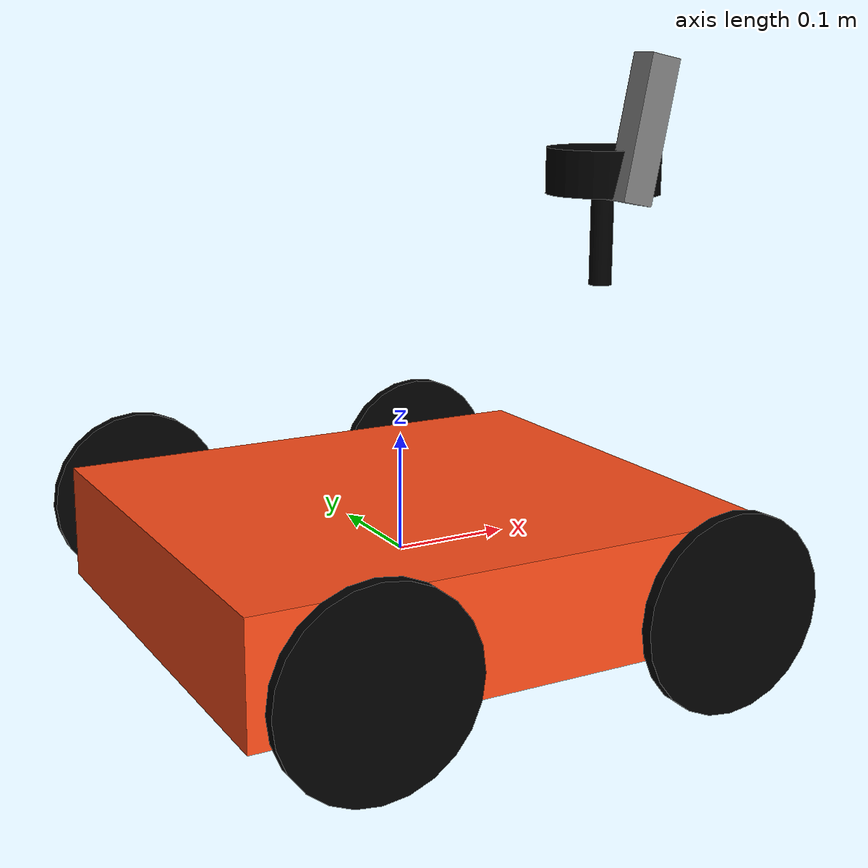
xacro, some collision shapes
<?xml version="1.0"?>

<robot name='robot' xmlns:xacro="http://ros.org/wiki/xacro">

  <xacro:property name="wheel_offset_x" value="0.0"/>
  <xacro:property name="wheel_offset_y" value="0.0"/>
  <xacro:property name="wheel_offset_z" value="0.0"/>

  <xacro:property name="wheel_mass" value="0.1"/>
  <xacro:property name="wheel_radius" value="0.08"/>
  <xacro:property name="wheel_width" value="0.01"/>

  <xacro:property name="body_height" value="0.1"/>
  <xacro:property name="body_width" value="0.45"/>
  <xacro:property name="body_length" value="0.4"/>
  <xacro:property name="mass" value="5.0"/>

  <xacro:property name="wheeltrack" value="0.5"/>
  <xacro:property name="wheelbase" value="0.3"/>

  <xacro:property name="chassis_offset_z" value="0.0"/>
  <xacro:property name="chassis_offset_y" value="0.0"/>
  <xacro:property name="chassis_offset_x" value="0.0"/>

  <xacro:include filename="$(find robot_description)/urdf/gazebo.urdf.xacro" />
  <xacro:include filename="$(find robot_description)/urdf/lidar.urdf.xacro" />
  <xacro:include filename="$(find robot_description)/urdf/depth.urdf.xacro" />
  <xacro:include filename="$(find robot_description)/urdf/imu.urdf.xacro" />

  <material name="white">
      <color rgba="1 1 1 1" />
  </material>

  <material name="orange">
      <color rgba="1 0.3 0.1 1"/>
  </material>

  <material name="blue">
      <color rgba="0.2 0.2 1 1"/>
  </material>

  <material name="black">
      <color rgba="0 0 0 1"/>
  </material>

  <material name="red">
      <color rgba="1 0 0 1"/>
  </material>

  <link name="base_link">
  </link>

  <link name="base_footprint">
  </link>

  <joint name="base_footprint_joint" type="fixed">
    <parent link="base_link"/>
    <child link="base_footprint"/>
    <origin rpy="0 0 0" xyz="0 0 0"/>
  </joint>

  <joint name="body_joint" type="fixed">
    <parent link="base_link"/>
    <child link="body_link"/>
    <origin xyz="${-wheel_offset_x} ${-wheel_offset_y} ${-wheel_offset_z}" rpy ="0 0 ${pi/2}"/>
  </joint>

  <link name="body_link">
    <visual>
        <geometry>
          <mesh filename="file://$(find robot_description)/urdf/shorty_pizza.stl" scale="0.005 0.005 0.005"/>
        </geometry>
      <material name="orange"/>
    </visual>
    <collision>
      <geometry>
        <box size="${body_length} ${body_width} ${body_height}"/>
      </geometry>
    </collision>
    <inertial>
      <origin xyz="0 0 0" rpy="0 0 0"/>
      <mass value="${mass}" />
      <inertia ixx="${(1/12) * mass * (body_width*body_width+body_height*body_height)}" ixy="0.0" ixz="0.0"
               iyy="${(1/12) * mass * (body_length*body_length+body_height*body_height)}" iyz="0.0"
               izz="${(1/12) * mass * (body_length*body_length+body_width*body_width)}"/>
    </inertial>
  </link>

  <gazebo reference="body_link">
    <material>Gazebo/Orange</material>
  </gazebo>

  <xacro:macro name="wheel" params="prefix">
    <link name="${prefix}_wheel_link">
      <visual>
        <geometry>
          <cylinder length="${wheel_width}" radius="${wheel_radius}"/>
        </geometry>
        <material name="black"/>
        <origin rpy="${pi/2} 0 0" xyz="0 0 0"/>
      </visual>
      <collision>
        <geometry>
          <cylinder length="${wheel_width}" radius="${wheel_radius}"/>
        </geometry>
        <origin rpy="${pi/2} 0 0" xyz="0 0 0"/>
      </collision>
      <inertial>
        <origin xyz="0 0 0" rpy="0 0 0"/>
        <mass value="${wheel_mass}" />
        <inertia ixx="${(1/12) * wheel_mass * (3*wheel_radius*wheel_radius + wheel_width*wheel_width)}" ixy="0.0" ixz="0.0"
                 iyy="${(1/12) * wheel_mass * (3*wheel_radius*wheel_radius + wheel_width*wheel_width)}" iyz="0.0"
                 izz="${(1/12) * wheel_mass * (wheel_radius*wheel_radius)}"/>
      </inertial>
    </link>
    <gazebo reference="${prefix}_wheel_link">
      <material>Gazebo/Black</material>
    </gazebo>
  </xacro:macro>

  <xacro:wheel prefix="front_left"/>
  <xacro:wheel prefix="front_right"/>
  <xacro:wheel prefix="rear_left"/>
  <xacro:wheel prefix="rear_right"/>

  <xacro:macro name="wheel_joint" params="prefix origin_xyz">
    <joint name="${prefix}_wheel_joint" type="continuous">
      <origin xyz="${origin_xyz}"/>
      <parent link="base_link"/>
      <child link="${prefix}_wheel_link"/>
      <axis xyz="0 1 0"/>
    </joint>
  </xacro:macro>

  <xacro:wheel_joint prefix="front_left" origin_xyz="${wheelbase / 2 + chassis_offset_x} ${wheeltrack / 2 + chassis_offset_y} ${chassis_offset_z}"/>
  <xacro:wheel_joint prefix="front_right" origin_xyz="${wheelbase / 2 + chassis_offset_x} ${-wheeltrack / 2 + chassis_offset_y} ${chassis_offset_z}"/>
  <xacro:wheel_joint prefix="rear_left" origin_xyz="${-wheelbase / 2 + chassis_offset_x} ${wheeltrack / 2 + chassis_offset_y} ${chassis_offset_z}"/>
  <xacro:wheel_joint prefix="rear_right" origin_xyz="${-wheelbase / 2 + chassis_offset_x} ${-wheeltrack / 2 + chassis_offset_y} ${chassis_offset_z}"/>

</robot>

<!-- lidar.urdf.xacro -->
<robot xmlns:xacro="http://www.ros.org/wiki/xacro">

    <joint name="laser_joint" type="fixed">
        <parent link="base_link"/>
        <child link="laser_frame"/>
        <origin xyz="0.2 0 0.312" rpy="0 0 0"/>
    </joint>

    <link name="laser_frame">
        <visual>
            <geometry>
                <cylinder radius="0.05" length="0.04"/>
            </geometry>
            <material name="black"/>
        </visual>
        <visual>
            <origin xyz="0 0 -0.05"/>
            <geometry>
                <cylinder radius="0.01" length="0.1"/>
            </geometry>
            <material name="black"/>
        </visual>
        <collision>
            <geometry>
                <cylinder radius="0.05" length="0.04"/>
            </geometry>
        </collision>
        <inertial>
            <origin xyz="0 0 0" rpy="0 0 0"/>
            <mass value="0.1" />
            <inertia ixx="${(1/12) * 0.1 * (3*0.05*0.05 + 0.04*0.04)}" ixy="0.0" ixz="0.0"
                     iyy="${(1/12) * 0.1 * (3*0.05*0.05 + 0.04*0.04)}" iyz="0.0"
                     izz="${(1/2) * 0.1 * (0.05*0.05)}" />
        </inertial>
    </link>

    <gazebo reference="laser_frame">
        <material>Gazebo/Black</material>

        <sensor name='laser_sensor_frame' type='gpu_lidar'>"
            <gz_frame_id>robot/laser_frame</gz_frame_id>
            <pose> 0 0 0 0 0 0 </pose>
            <visualize>true</visualize>
            <always_on>true</always_on>
            <update_rate>10</update_rate>
            <ray>
                <scan>
                    <horizontal>
                        <samples>360</samples>
                        <min_angle>-3.14</min_angle>
                        <max_angle>3.14</max_angle>
                    </horizontal>
                </scan>
                <range>
                    <min>0.3</min>
                    <max>12</max>
                </range>
                <noise>
                    <type>gaussian</type>
                    <mean>0.0</mean>
                    <stddev>0.007</stddev>
                </noise>
            </ray>
        </sensor>
    </gazebo>
</robot>

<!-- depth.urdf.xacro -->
<robot xmlns:xacro="http://www.ros.org/wiki/xacro">

    <xacro:property name="M_PI" value="3.1415926535897931" />

    <joint name="depth_joint" type="fixed">
        <parent link="base_link"/>
        <child link="depth_frame"/>
        <origin xyz="0.2 0 0.35" rpy="0 0.2 0"/>
    </joint>

    <material name="aluminum">
      <color rgba="0.5 0.5 0.5 1"/>
    </material>

    <link name="depth_frame">
        <visual>
            <origin xyz="0.00465 -0.0475 0" rpy="${M_PI/2} 0 ${M_PI/2}"/>
            <geometry>
                <mesh filename="file://$(find robot_description)/urdf/d455.stl" scale="0.001 0.001 0.001"/>
                <!--box size="0.026 0.124 0.029"/-->
            </geometry>
            <material name="aluminum"/>
        </visual>
        <collision>
            <origin xyz="0.00465 -0.0475 0" rpy="${M_PI/2} 0 ${M_PI/2}"/>
            <geometry>
                <box size="0.026 0.124 0.029"/>
            </geometry>
        </collision>
        <inertial>
            <origin xyz="0 0 0" rpy="0 0 0"/>
            <mass value="0.116" />
            <inertia ixx="${(1/12) * 0.116 * (0.026*0.026+0.029*0.029)}" ixy="0.0" ixz="0.0"
                     iyy="${(1/12) * 0.116 * (0.124*0.124+0.029*0.029)}" iyz="0.0"
                     izz="${(1/12) * 0.116 * (0.124*0.124+0.026*0.026)}" />
        </inertial>
    </link>

    <gazebo reference="depth_frame">
        <sensor name='depth_sensor_frame' type='depth_camera'>"
            <gz_frame_id>robot/depth_frame</gz_frame_id>
            <pose> 0 0 0 0 0 0 </pose>
            <always_on>true</always_on>
            <update_rate>10</update_rate>
            <camera>
                <horizontal_fov>1.51843645</horizontal_fov>
                <image>
                    <width>848</width>
                    <height>480</height>
                    <format>R_FLOAT32</format>
                </image>
                <clip>
                    <near>0.1</near>
                    <far>5</far>
                </clip>
                <lens>
                    <intrinsics>
                    <fx>421.61578369140625</fx>
                    <fy>421.61578369140625</fy>
                    <cx>422.2854309082031</cx>
                    <cy>236.57237243652344</cy>
                    <s>0</s>
                    </intrinsics>
                </lens>
                <noise>
                    <type>gaussian</type>
                    <mean>0.0</mean>
                    <stddev>0.007</stddev>
                </noise>
            </camera>
        </sensor>
        <sensor name="color_sensor_frame" type="camera">
            <gz_frame_id>robot/depth_frame</gz_frame_id>
            <pose>0 0 0 0 0 0</pose>
            <update_rate>30</update_rate>
            <always_on>true</always_on>
            <camera>
                <horizontal_fov>1.20427718</horizontal_fov>
                <image>
                    <width>848</width>
                    <height>480</height>
                </image>
                <clip>
                    <near>0.1</near>
                    <far>5</far>
                </clip>
                <lens>
                    <intrinsics>
                    <fx>615.9603271484375</fx>
                    <fy>616.227294921875</fy>
                    <cx>419.83026123046875</cx>
                    <cy>245.1431427001953</cy>
                    <s>0</s>
                    </intrinsics>
                </lens>
            </camera>
        </sensor>
    </gazebo>
</robot>

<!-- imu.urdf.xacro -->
<robot xmlns:xacro="http://www.ros.org/wiki/xacro">
    <joint name="imu_joint" type="fixed">
        <parent link="base_link"/>
        <child link="imu_frame"/>
        <origin xyz="0 0 0" rpy="0 0 0"/>
    </joint>

    <link name="imu_frame">
        <visual>
            <origin xyz="0 0 0" rpy="0 0 0"/>
            <geometry>
                <box size="0.01 0.01 0.01"/>
            </geometry>
            <material name="aluminum"/>
        </visual>
        <collision>
            <origin xyz="0 0 0" rpy="0 0 0"/>
            <geometry>
                <box size="0.01 0.01 0.01"/>
            </geometry>
        </collision>
        <inertial>
            <origin xyz="0 0 0" rpy="0 0 0"/>
            <mass value="0.116" />
            <inertia ixx="${(1/12) * 0.001 * (0.01*0.01+0.01*0.01)}" ixy="0.0" ixz="0.0"
                     iyy="${(1/12) * 0.001 * (0.01*0.01+0.01*0.01)}" iyz="0.0"
                     izz="${(1/12) * 0.001 * (0.01*0.01+0.01*0.01)}" />
        </inertial>
    </link>

    <gazebo reference="imu_frame">
        <sensor name="imu_sensor" type="imu">
            <gz_frame_id>robot/imu_frame</gz_frame_id>
            <always_on>1</always_on>
            <update_rate>1</update_rate>
            <visualize>true</visualize>
            <topic>imu</topic>
        </sensor>
    </gazebo>
</robot>
